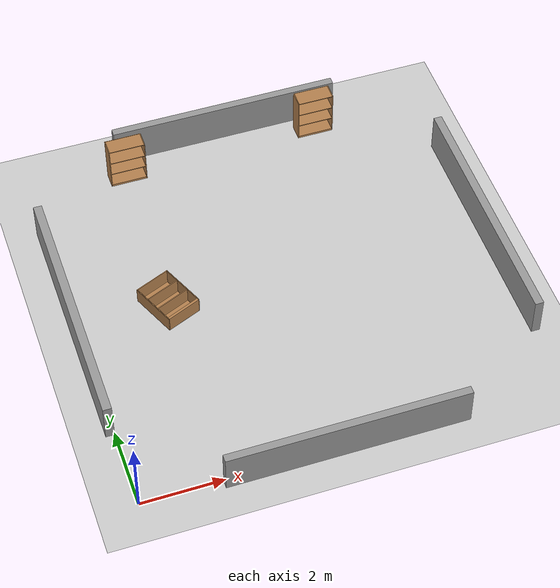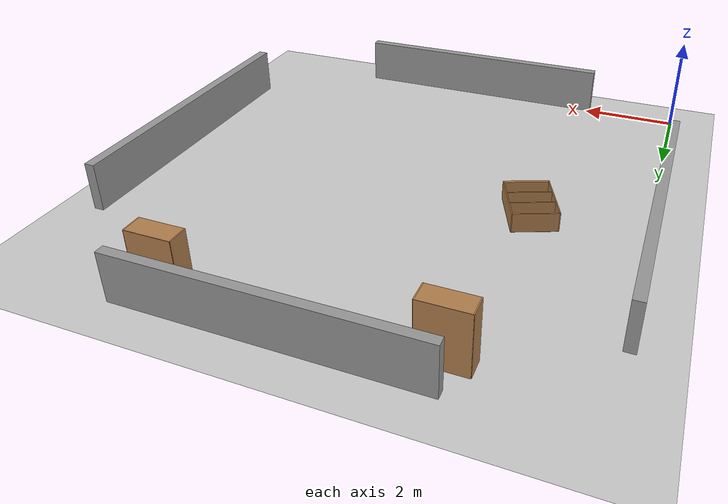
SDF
<sdf version="1.6">
 <world name="default">
  <model name="ground_plane">
   <static>1</static>
   <link name="link">
    <collision name="collision">
     <geometry><plane><normal>0 0 1</normal><size>100 100</size></plane></geometry>
     <surface><friction><ode><mu>100</mu><mu2>50</mu2></ode></friction></surface>
    </collision>
    <visual name="visual">
     <cast_shadows>0</cast_shadows>
     <geometry><plane><normal>0 0 1</normal><size>100 100</size></plane></geometry>
     <material>
      <script><uri>file://media/materials/scripts/gazebo.material</uri><name>Gazebo/Grey</name></script>
     </material>
    </visual>
   </link>
  </model>
  <light name="sun" type="directional">
   <pose>0 0 10 0 -0 0</pose>
   <diffuse>0.8 0.8 0.8 1</diffuse>
   <specular>0.1 0.1 0.1 1</specular>
   <attenuation>
    <range>1000</range>
    <constant>0.9</constant>
    <linear>0.01</linear>
    <quadratic>0.001</quadratic>
   </attenuation>
   <direction>-0.5 0.5 -1</direction>
  </light>
  <gravity>0 0 -9.8</gravity>
  <magnetic_field>6e-06 2.3e-05 -4.2e-05</magnetic_field>
  <atmosphere type="adiabatic"/>
  <physics name="default_physics" default="0" type="ode">
   <max_step_size>0.001</max_step_size>
   <real_time_factor>1</real_time_factor>
   <real_time_update_rate>1000</real_time_update_rate>
  </physics>
  <scene><ambient>0.4 0.4 0.4 1</ambient><background>0.7 0.7 0.7 1</background><shadows>1</shadows></scene>
  <spherical_coordinates>
   <surface_model>EARTH_WGS84</surface_model>
   <latitude_deg>0</latitude_deg>
   <longitude_deg>0</longitude_deg>
   <elevation>0</elevation>
   <heading_deg>0</heading_deg>
  </spherical_coordinates>
  <model name="wall2">
   <link name="link">
    <inertial>
     <mass>1</mass>
     <inertia>
      <ixx>0.166667</ixx>
      <ixy>0</ixy>
      <ixz>0</ixz>
      <iyy>0.166667</iyy>
      <iyz>0</iyz>
      <izz>0.166667</izz>
     </inertia>
    </inertial>
    <visual name="visual">
     <geometry><box><size>0.209732 6.34491 1</size></box></geometry>
     <material>
      <script><name>Gazebo/Grey</name><uri>file://media/materials/scripts/gazebo.material</uri></script>
      <ambient>0.3 0.3 0.3 1</ambient>
      <diffuse>0.7 0.7 0.7 1</diffuse>
      <specular>0.01 0.01 0.01 1</specular>
      <emissive>0 0 0 1</emissive>
     </material>
    </visual>
    <collision name="collision">
     <geometry><box><size>0.209732 6.34491 1</size></box></geometry>
     <surface>
      <friction>
       <ode><mu>1</mu><mu2>1</mu2><fdir1>0 0 0</fdir1><slip1>0</slip1><slip2>0</slip2></ode>
       <torsional>
        <coefficient>1</coefficient>
        <patch_radius>0</patch_radius>
        <surface_radius>0</surface_radius>
        <use_patch_radius>1</use_patch_radius>
        <ode><slip>0</slip></ode>
       </torsional>
      </friction>
      <bounce><restitution_coefficient>0</restitution_coefficient><threshold>1e+06</threshold></bounce>
      <contact>
       <collide_without_contact>0</collide_without_contact>
       <collide_without_contact_bitmask>1</collide_without_contact_bitmask>
       <collide_bitmask>1</collide_bitmask>
       <ode>
        <soft_cfm>0</soft_cfm>
        <soft_erp>0.2</soft_erp>
        <kp>1e+13</kp>
        <kd>1</kd>
        <max_vel>0.01</max_vel>
        <min_depth>0</min_depth>
       </ode>
       <bullet>
        <split_impulse>1</split_impulse>
        <split_impulse_penetration_threshold>-0.01</split_impulse_penetration_threshold>
        <soft_cfm>0</soft_cfm>
        <soft_erp>0.2</soft_erp>
        <kp>1e+13</kp>
        <kd>1</kd>
       </bullet>
      </contact>
     </surface>
    </collision>
   </link>
   <static>1</static>
   <pose>-0.109062 5.11991 0.5 0 -0 0</pose>
  </model>
  <model name="wall2_clone">
   <link name="link">
    <inertial>
     <mass>1</mass>
     <inertia>
      <ixx>0.166667</ixx>
      <ixy>0</ixy>
      <ixz>0</ixz>
      <iyy>0.166667</iyy>
      <iyz>0</iyz>
      <izz>0.166667</izz>
     </inertia>
    </inertial>
    <visual name="visual">
     <geometry><box><size>0.209732 6.34496 1</size></box></geometry>
     <material>
      <script><name>Gazebo/Grey</name><uri>file://media/materials/scripts/gazebo.material</uri></script>
      <ambient>0.3 0.3 0.3 1</ambient>
      <diffuse>0.7 0.7 0.7 1</diffuse>
      <specular>0.01 0.01 0.01 1</specular>
      <emissive>0 0 0 1</emissive>
     </material>
    </visual>
    <collision name="collision">
     <geometry><box><size>0.209732 6.34496 1</size></box></geometry>
     <surface>
      <friction>
       <ode><mu>1</mu><mu2>1</mu2><fdir1>0 0 0</fdir1><slip1>0</slip1><slip2>0</slip2></ode>
       <torsional>
        <coefficient>1</coefficient>
        <patch_radius>0</patch_radius>
        <surface_radius>0</surface_radius>
        <use_patch_radius>1</use_patch_radius>
        <ode><slip>0</slip></ode>
       </torsional>
      </friction>
      <bounce><restitution_coefficient>0</restitution_coefficient><threshold>1e+06</threshold></bounce>
      <contact>
       <collide_without_contact>0</collide_without_contact>
       <collide_without_contact_bitmask>1</collide_without_contact_bitmask>
       <collide_bitmask>1</collide_bitmask>
       <ode>
        <soft_cfm>0</soft_cfm>
        <soft_erp>0.2</soft_erp>
        <kp>1e+13</kp>
        <kd>1</kd>
        <max_vel>0.01</max_vel>
        <min_depth>0</min_depth>
       </ode>
       <bullet>
        <split_impulse>1</split_impulse>
        <split_impulse_penetration_threshold>-0.01</split_impulse_penetration_threshold>
        <soft_cfm>0</soft_cfm>
        <soft_erp>0.2</soft_erp>
        <kp>1e+13</kp>
        <kd>1</kd>
       </bullet>
      </contact>
     </surface>
    </collision>
   </link>
   <static>1</static>
   <pose>10.1152 4.83597 0.5 0 -0 0</pose>
  </model>
  <model name="wall1_0">
   <link name="link">
    <inertial>
     <mass>1</mass>
     <inertia>
      <ixx>0.166667</ixx>
      <ixy>0</ixy>
      <ixz>0</ixz>
      <iyy>0.166667</iyy>
      <iyz>0</iyz>
      <izz>0.166667</izz>
     </inertia>
    </inertial>
    <visual name="visual">
     <geometry><box><size>5.78146 0.189922 1</size></box></geometry>
     <material>
      <script><name>Gazebo/Grey</name><uri>file://media/materials/scripts/gazebo.material</uri></script>
      <ambient>0.3 0.3 0.3 1</ambient>
      <diffuse>0.7 0.7 0.7 1</diffuse>
      <specular>0.01 0.01 0.01 1</specular>
      <emissive>0 0 0 1</emissive>
     </material>
    </visual>
    <collision name="collision">
     <geometry><box><size>5.78146 0.189922 1</size></box></geometry>
     <surface>
      <friction>
       <ode><mu>1</mu><mu2>1</mu2><fdir1>0 0 0</fdir1><slip1>0</slip1><slip2>0</slip2></ode>
       <torsional>
        <coefficient>1</coefficient>
        <patch_radius>0</patch_radius>
        <surface_radius>0</surface_radius>
        <use_patch_radius>1</use_patch_radius>
        <ode><slip>0</slip></ode>
       </torsional>
      </friction>
      <bounce><restitution_coefficient>0</restitution_coefficient><threshold>1e+06</threshold></bounce>
      <contact>
       <collide_without_contact>0</collide_without_contact>
       <collide_without_contact_bitmask>1</collide_without_contact_bitmask>
       <collide_bitmask>1</collide_bitmask>
       <ode>
        <soft_cfm>0</soft_cfm>
        <soft_erp>0.2</soft_erp>
        <kp>1e+13</kp>
        <kd>1</kd>
        <max_vel>0.01</max_vel>
        <min_depth>0</min_depth>
       </ode>
       <bullet>
        <split_impulse>1</split_impulse>
        <split_impulse_penetration_threshold>-0.01</split_impulse_penetration_threshold>
        <soft_cfm>0</soft_cfm>
        <soft_erp>0.2</soft_erp>
        <kp>1e+13</kp>
        <kd>1</kd>
       </bullet>
      </contact>
     </surface>
    </collision>
   </link>
   <static>1</static>
   <pose>5.153 10.11 0.5 0 -0 0</pose>
  </model>
  <model name="wall1_0_clone">
   <link name="link">
    <inertial>
     <mass>1</mass>
     <inertia>
      <ixx>0.166667</ixx>
      <ixy>0</ixy>
      <ixz>0</ixz>
      <iyy>0.166667</iyy>
      <iyz>0</iyz>
      <izz>0.166667</izz>
     </inertia>
    </inertial>
    <visual name="visual">
     <geometry><box><size>5.78146 0.189922 1</size></box></geometry>
     <material>
      <script><name>Gazebo/Grey</name><uri>file://media/materials/scripts/gazebo.material</uri></script>
      <ambient>0.3 0.3 0.3 1</ambient>
      <diffuse>0.7 0.7 0.7 1</diffuse>
      <specular>0.01 0.01 0.01 1</specular>
      <emissive>0 0 0 1</emissive>
     </material>
    </visual>
    <collision name="collision">
     <geometry><box><size>5.78146 0.189922 1</size></box></geometry>
     <surface>
      <friction>
       <ode><mu>1</mu><mu2>1</mu2><fdir1>0 0 0</fdir1><slip1>0</slip1><slip2>0</slip2></ode>
       <torsional>
        <coefficient>1</coefficient>
        <patch_radius>0</patch_radius>
        <surface_radius>0</surface_radius>
        <use_patch_radius>1</use_patch_radius>
        <ode><slip>0</slip></ode>
       </torsional>
      </friction>
      <bounce><restitution_coefficient>0</restitution_coefficient><threshold>1e+06</threshold></bounce>
      <contact>
       <collide_without_contact>0</collide_without_contact>
       <collide_without_contact_bitmask>1</collide_without_contact_bitmask>
       <collide_bitmask>1</collide_bitmask>
       <ode>
        <soft_cfm>0</soft_cfm>
        <soft_erp>0.2</soft_erp>
        <kp>1e+13</kp>
        <kd>1</kd>
        <max_vel>0.01</max_vel>
        <min_depth>0</min_depth>
       </ode>
       <bullet>
        <split_impulse>1</split_impulse>
        <split_impulse_penetration_threshold>-0.01</split_impulse_penetration_threshold>
        <soft_cfm>0</soft_cfm>
        <soft_erp>0.2</soft_erp>
        <kp>1e+13</kp>
        <kd>1</kd>
       </bullet>
      </contact>
     </surface>
    </collision>
   </link>
   <static>1</static>
   <pose>4.82102 -0.119292 0.5 0 -0 0</pose>
  </model>
  <audio><device>default</device></audio>
  <model name="bookshelf_0">
   <static>1</static>
   <link name="link">
    <inertial><mass>1</mass></inertial>
    <collision name="back">
     <pose>0 0.005 0.6 0 -0 0</pose>
     <geometry><box><size>0.9 0.01 1.2</size></box></geometry>
    </collision>
    <visual name="visual1">
     <pose>0 0.005 0.6 0 -0 0</pose>
     <geometry><box><size>0.9 0.01 1.2</size></box></geometry>
     <material>
      <script><uri>file://media/materials/scripts/gazebo.material</uri><name>Gazebo/Wood</name></script>
     </material>
    </visual>
    <collision name="left_side">
     <pose>0.45 -0.195 0.6 0 -0 0</pose>
     <geometry><box><size>0.02 0.4 1.2</size></box></geometry>
    </collision>
    <visual name="visual2">
     <pose>0.45 -0.195 0.6 0 -0 0</pose>
     <geometry><box><size>0.02 0.4 1.2</size></box></geometry>
     <material>
      <script><uri>file://media/materials/scripts/gazebo.material</uri><name>Gazebo/Wood</name></script>
     </material>
    </visual>
    <collision name="right_side">
     <pose>-0.45 -0.195 0.6 0 -0 0</pose>
     <geometry><box><size>0.02 0.4 1.2</size></box></geometry>
    </collision>
    <visual name="visual3">
     <pose>-0.45 -0.195 0.6 0 -0 0</pose>
     <geometry><box><size>0.02 0.4 1.2</size></box></geometry>
     <material>
      <script><uri>file://media/materials/scripts/gazebo.material</uri><name>Gazebo/Wood</name></script>
     </material>
    </visual>
    <collision name="bottom">
     <pose>0 -0.195 0.03 0 -0 0</pose>
     <geometry><box><size>0.88 0.4 0.06</size></box></geometry>
    </collision>
    <visual name="visual4">
     <pose>0 -0.195 0.03 0 -0 0</pose>
     <geometry><box><size>0.88 0.4 0.06</size></box></geometry>
     <material>
      <script><uri>file://media/materials/scripts/gazebo.material</uri><name>Gazebo/Wood</name></script>
     </material>
    </visual>
    <collision name="top">
     <pose>0 -0.195 1.19 0 -0 0</pose>
     <geometry><box><size>0.88 0.4 0.02</size></box></geometry>
    </collision>
    <visual name="visual5">
     <pose>0 -0.195 1.19 0 -0 0</pose>
     <geometry><box><size>0.88 0.4 0.02</size></box></geometry>
     <material>
      <script><uri>file://media/materials/scripts/gazebo.material</uri><name>Gazebo/Wood</name></script>
     </material>
    </visual>
    <collision name="low_shelf">
     <pose>0 -0.195 0.43 0 -0 0</pose>
     <geometry><box><size>0.88 0.4 0.02</size></box></geometry>
    </collision>
    <visual name="visual6">
     <pose>0 -0.195 0.43 0 -0 0</pose>
     <geometry><box><size>0.88 0.4 0.02</size></box></geometry>
     <material>
      <script><uri>file://media/materials/scripts/gazebo.material</uri><name>Gazebo/Wood</name></script>
     </material>
    </visual>
    <collision name="high_shelf">
     <pose>0 -0.195 0.8 0 -0 0</pose>
     <geometry><box><size>0.88 0.4 0.02</size></box></geometry>
    </collision>
    <visual name="visual7">
     <pose>0 -0.195 0.8 0 -0 0</pose>
     <geometry><box><size>0.88 0.4 0.02</size></box></geometry>
     <material>
      <script><uri>file://media/materials/scripts/gazebo.material</uri><name>Gazebo/Wood</name></script>
     </material>
    </visual>
   </link>
   <pose>2.40685 9.65908 0 0 -0 0</pose>
  </model>
  <model name="bookshelf_0_clone">
   <static>1</static>
   <link name="link">
    <inertial><mass>1</mass></inertial>
    <collision name="back">
     <pose>0 0.005 0.6 0 -0 0</pose>
     <geometry><box><size>0.9 0.01 1.2</size></box></geometry>
    </collision>
    <visual name="visual1">
     <pose>0 0.005 0.6 0 -0 0</pose>
     <geometry><box><size>0.9 0.01 1.2</size></box></geometry>
     <material>
      <script><uri>file://media/materials/scripts/gazebo.material</uri><name>Gazebo/Wood</name></script>
     </material>
    </visual>
    <collision name="left_side">
     <pose>0.45 -0.195 0.6 0 -0 0</pose>
     <geometry><box><size>0.02 0.4 1.2</size></box></geometry>
    </collision>
    <visual name="visual2">
     <pose>0.45 -0.195 0.6 0 -0 0</pose>
     <geometry><box><size>0.02 0.4 1.2</size></box></geometry>
     <material>
      <script><uri>file://media/materials/scripts/gazebo.material</uri><name>Gazebo/Wood</name></script>
     </material>
    </visual>
    <collision name="right_side">
     <pose>-0.45 -0.195 0.6 0 -0 0</pose>
     <geometry><box><size>0.02 0.4 1.2</size></box></geometry>
    </collision>
    <visual name="visual3">
     <pose>-0.45 -0.195 0.6 0 -0 0</pose>
     <geometry><box><size>0.02 0.4 1.2</size></box></geometry>
     <material>
      <script><uri>file://media/materials/scripts/gazebo.material</uri><name>Gazebo/Wood</name></script>
     </material>
    </visual>
    <collision name="bottom">
     <pose>0 -0.195 0.03 0 -0 0</pose>
     <geometry><box><size>0.88 0.4 0.06</size></box></geometry>
    </collision>
    <visual name="visual4">
     <pose>0 -0.195 0.03 0 -0 0</pose>
     <geometry><box><size>0.88 0.4 0.06</size></box></geometry>
     <material>
      <script><uri>file://media/materials/scripts/gazebo.material</uri><name>Gazebo/Wood</name></script>
     </material>
    </visual>
    <collision name="top">
     <pose>0 -0.195 1.19 0 -0 0</pose>
     <geometry><box><size>0.88 0.4 0.02</size></box></geometry>
    </collision>
    <visual name="visual5">
     <pose>0 -0.195 1.19 0 -0 0</pose>
     <geometry><box><size>0.88 0.4 0.02</size></box></geometry>
     <material>
      <script><uri>file://media/materials/scripts/gazebo.material</uri><name>Gazebo/Wood</name></script>
     </material>
    </visual>
    <collision name="low_shelf">
     <pose>0 -0.195 0.43 0 -0 0</pose>
     <geometry><box><size>0.88 0.4 0.02</size></box></geometry>
    </collision>
    <visual name="visual6">
     <pose>0 -0.195 0.43 0 -0 0</pose>
     <geometry><box><size>0.88 0.4 0.02</size></box></geometry>
     <material>
      <script><uri>file://media/materials/scripts/gazebo.material</uri><name>Gazebo/Wood</name></script>
     </material>
    </visual>
    <collision name="high_shelf">
     <pose>0 -0.195 0.8 0 -0 0</pose>
     <geometry><box><size>0.88 0.4 0.02</size></box></geometry>
    </collision>
    <visual name="visual7">
     <pose>0 -0.195 0.8 0 -0 0</pose>
     <geometry><box><size>0.88 0.4 0.02</size></box></geometry>
     <material>
      <script><uri>file://media/materials/scripts/gazebo.material</uri><name>Gazebo/Wood</name></script>
     </material>
    </visual>
   </link>
   <pose>2.42908 4.57292 0.025279 -1.57339 -0 0.398428</pose>
  </model>
  <model name="bookshelf_0_clone_0">
   <static>1</static>
   <link name="link">
    <inertial><mass>1</mass></inertial>
    <collision name="back">
     <pose>0 0.005 0.6 0 -0 0</pose>
     <geometry><box><size>0.9 0.01 1.2</size></box></geometry>
    </collision>
    <visual name="visual1">
     <pose>0 0.005 0.6 0 -0 0</pose>
     <geometry><box><size>0.9 0.01 1.2</size></box></geometry>
     <material>
      <script><uri>file://media/materials/scripts/gazebo.material</uri><name>Gazebo/Wood</name></script>
     </material>
    </visual>
    <collision name="left_side">
     <pose>0.45 -0.195 0.6 0 -0 0</pose>
     <geometry><box><size>0.02 0.4 1.2</size></box></geometry>
    </collision>
    <visual name="visual2">
     <pose>0.45 -0.195 0.6 0 -0 0</pose>
     <geometry><box><size>0.02 0.4 1.2</size></box></geometry>
     <material>
      <script><uri>file://media/materials/scripts/gazebo.material</uri><name>Gazebo/Wood</name></script>
     </material>
    </visual>
    <collision name="right_side">
     <pose>-0.45 -0.195 0.6 0 -0 0</pose>
     <geometry><box><size>0.02 0.4 1.2</size></box></geometry>
    </collision>
    <visual name="visual3">
     <pose>-0.45 -0.195 0.6 0 -0 0</pose>
     <geometry><box><size>0.02 0.4 1.2</size></box></geometry>
     <material>
      <script><uri>file://media/materials/scripts/gazebo.material</uri><name>Gazebo/Wood</name></script>
     </material>
    </visual>
    <collision name="bottom">
     <pose>0 -0.195 0.03 0 -0 0</pose>
     <geometry><box><size>0.88 0.4 0.06</size></box></geometry>
    </collision>
    <visual name="visual4">
     <pose>0 -0.195 0.03 0 -0 0</pose>
     <geometry><box><size>0.88 0.4 0.06</size></box></geometry>
     <material>
      <script><uri>file://media/materials/scripts/gazebo.material</uri><name>Gazebo/Wood</name></script>
     </material>
    </visual>
    <collision name="top">
     <pose>0 -0.195 1.19 0 -0 0</pose>
     <geometry><box><size>0.88 0.4 0.02</size></box></geometry>
    </collision>
    <visual name="visual5">
     <pose>0 -0.195 1.19 0 -0 0</pose>
     <geometry><box><size>0.88 0.4 0.02</size></box></geometry>
     <material>
      <script><uri>file://media/materials/scripts/gazebo.material</uri><name>Gazebo/Wood</name></script>
     </material>
    </visual>
    <collision name="low_shelf">
     <pose>0 -0.195 0.43 0 -0 0</pose>
     <geometry><box><size>0.88 0.4 0.02</size></box></geometry>
    </collision>
    <visual name="visual6">
     <pose>0 -0.195 0.43 0 -0 0</pose>
     <geometry><box><size>0.88 0.4 0.02</size></box></geometry>
     <material>
      <script><uri>file://media/materials/scripts/gazebo.material</uri><name>Gazebo/Wood</name></script>
     </material>
    </visual>
    <collision name="high_shelf">
     <pose>0 -0.195 0.8 0 -0 0</pose>
     <geometry><box><size>0.88 0.4 0.02</size></box></geometry>
    </collision>
    <visual name="visual7">
     <pose>0 -0.195 0.8 0 -0 0</pose>
     <geometry><box><size>0.88 0.4 0.02</size></box></geometry>
     <material>
      <script><uri>file://media/materials/scripts/gazebo.material</uri><name>Gazebo/Wood</name></script>
     </material>
    </visual>
   </link>
   <pose>7.35928 9.76041 0 0 -0 0</pose>
  </model>
 </world>
</sdf>
